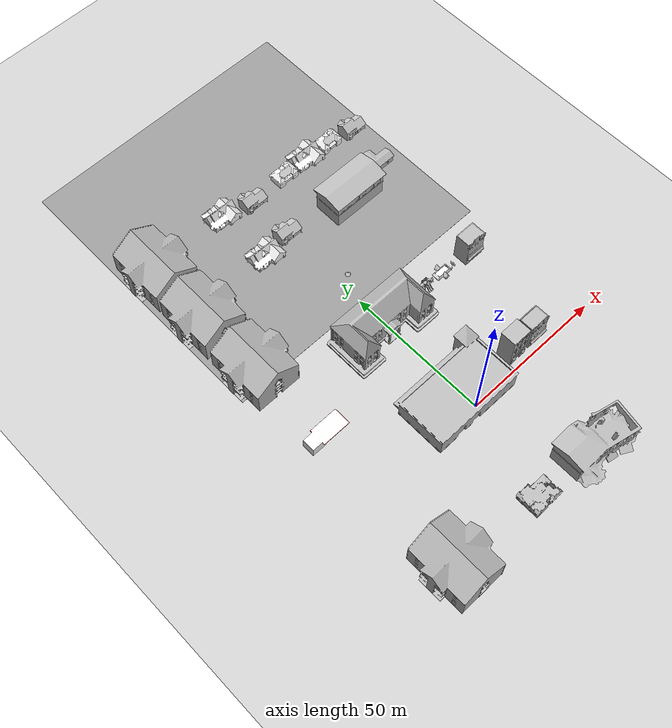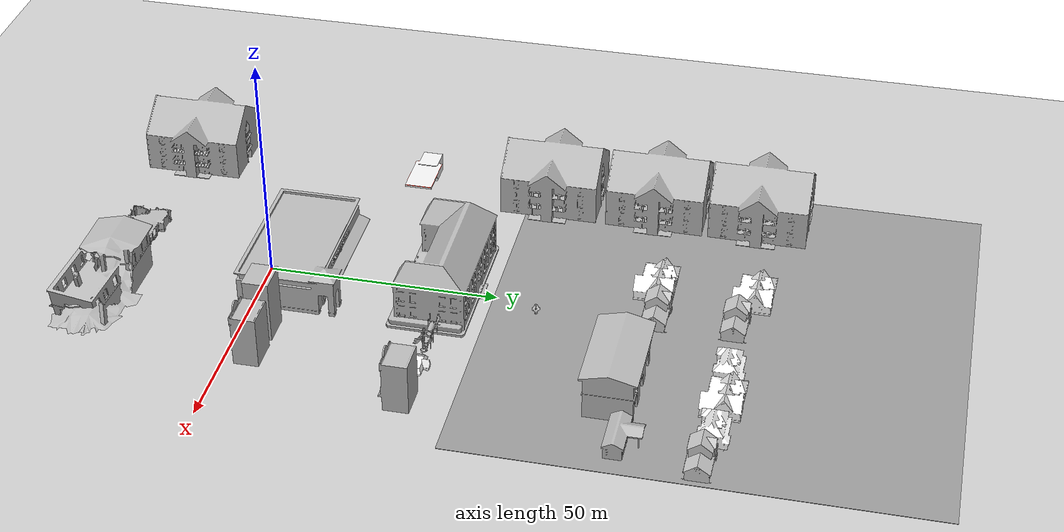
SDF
<sdf version="1.6">
 <world name="default">
  <light name="sun" type="directional">
   <pose>0 0 10 0 -0 0</pose>
   <diffuse>0.8 0.8 0.8 1</diffuse>
   <specular>0.1 0.1 0.1 1</specular>
   <attenuation>
    <range>1000</range>
    <constant>0.9</constant>
    <linear>0.01</linear>
    <quadratic>0.001</quadratic>
   </attenuation>
   <direction>-0.5 0.5 -1</direction>
  </light>
  <model name="ground_plane">
   <static>1</static>
   <link name="link">
    <collision name="collision">
     <geometry><plane><normal>0 0 1</normal><size>100 100</size></plane></geometry>
     <surface><friction><ode><mu>100</mu><mu2>50</mu2></ode></friction></surface>
    </collision>
    <visual name="visual">
     <cast_shadows>0</cast_shadows>
     <geometry><plane><normal>0 0 1</normal><size>100 100</size></plane></geometry>
     <material>
      <script><uri>file://media/materials/scripts/gazebo.material</uri><name>Gazebo/Grey</name></script>
     </material>
    </visual>
   </link>
  </model>
  <gravity>0 0 -9.8</gravity>
  <magnetic_field>6e-06 2.3e-05 -4.2e-05</magnetic_field>
  <atmosphere type="adiabatic"/>
  <physics name="default_physics" default="0" type="ode">
   <max_step_size>0.001</max_step_size>
   <real_time_factor>1</real_time_factor>
   <real_time_update_rate>1000</real_time_update_rate>
  </physics>
  <scene><ambient>0.4 0.4 0.4 1</ambient><background>0.7 0.7 0.7 1</background><shadows>1</shadows></scene>
  <spherical_coordinates>
   <surface_model>EARTH_WGS84</surface_model>
   <latitude_deg>0</latitude_deg>
   <longitude_deg>0</longitude_deg>
   <elevation>0</elevation>
   <heading_deg>0</heading_deg>
  </spherical_coordinates>
  <model name="collapsed_house">
   <static>1</static>
   <link name="link">
    <collision name="collision">
     <geometry>
      <mesh><scale>1 1 1</scale><uri>model://collapsed_house/meshes/collapsed_house.dae</uri></mesh>
     </geometry>
    </collision>
    <visual name="visual">
     <geometry>
      <mesh><scale>1 1 1</scale><uri>model://collapsed_house/meshes/collapsed_house.dae</uri></mesh>
     </geometry>
    </visual>
   </link>
   <pose>-7.6578 -31.8376 0 0 -0 0</pose>
  </model>
  <model name="collapsed_fire_station">
   <static>1</static>
   <link name="link">
    <collision name="collision">
     <geometry>
      <mesh><uri>model://collapsed_fire_station/meshes/collapsed_fire_station.dae</uri><scale>1 1 1</scale></mesh>
     </geometry>
    </collision>
    <visual name="visual">
     <geometry>
      <mesh><uri>model://collapsed_fire_station/meshes/collapsed_fire_station.dae</uri><scale>1 1 1</scale></mesh>
     </geometry>
    </visual>
   </link>
   <pose>17.3175 -32.6971 0 0 -0 0</pose>
  </model>
  <model name="ground_plane_0">
   <static>1</static>
   <link name="link">
    <collision name="collision">
     <geometry><plane><normal>0 0 1</normal><size>100 100</size></plane></geometry>
     <surface><friction><ode><mu>100</mu><mu2>50</mu2></ode></friction></surface>
    </collision>
    <visual name="visual">
     <cast_shadows>0</cast_shadows>
     <geometry><plane><normal>0 0 1</normal><size>100 100</size></plane></geometry>
     <material>
      <script><uri>file://media/materials/scripts/gazebo.material</uri><name>Gazebo/Grey</name></script>
     </material>
    </visual>
   </link>
   <pose>0.09158 99.1869 0 0 -0 0</pose>
  </model>
  <model name="House 1">
   <static>1</static>
   <link name="link">
    <collision name="collision">
     <geometry><mesh><uri>model://house_1/meshes/house_1.dae</uri><scale>1 1 1</scale></mesh></geometry>
    </collision>
    <visual name="visual">
     <geometry><mesh><uri>model://house_1/meshes/house_1.dae</uri><scale>1 1 1</scale></mesh></geometry>
     <material>
      <script>
       <uri>model://house_1/materials/scripts</uri>
       <uri>model://house_1/materials/textures</uri>
       <name>House_1/Diffuse</name>
      </script>
      <shader type="normal_map_object_space"><normal_map>House_1_Normal.png</normal_map></shader>
     </material>
    </visual>
   </link>
   <pose>25 102 0 0 -0 0</pose>
  </model>
  <model name="House 2">
   <static>1</static>
   <link name="link">
    <collision name="collision">
     <geometry><mesh><uri>model://house_2/meshes/house_2.dae</uri><scale>1 1 1</scale></mesh></geometry>
    </collision>
    <visual name="visual">
     <geometry><mesh><uri>model://house_2/meshes/house_2.dae</uri><scale>1 1 1</scale></mesh></geometry>
     <material>
      <script>
       <uri>model://house_2/materials/scripts</uri>
       <uri>model://house_2/materials/textures</uri>
       <name>House_2/Diffuse</name>
      </script>
     </material>
    </visual>
   </link>
   <pose>34 101 0 0 -0 0</pose>
  </model>
  <model name="House 3">
   <static>1</static>
   <link name="link">
    <collision name="collision">
     <geometry><mesh><uri>model://house_3/meshes/house_3.dae</uri><scale>1 1 1</scale></mesh></geometry>
    </collision>
    <visual name="visual">
     <geometry><mesh><uri>model://house_3/meshes/house_3.dae</uri><scale>1 1 1</scale></mesh></geometry>
     <material>
      <script>
       <uri>model://house_3/materials/scripts</uri>
       <uri>model://house_3/materials/textures</uri>
       <name>House_3/Diffuse</name>
      </script>
     </material>
    </visual>
   </link>
   <pose>45 100 0 0 -0 0</pose>
  </model>
  <model name="salon">
   <static>1</static>
   <link name="link">
    <collision name="collision">
     <pose>0 0 5.69469 0 -0 0</pose>
     <geometry><box><size>7.21297 5.37875 11.3894</size></box></geometry>
    </collision>
    <visual name="visual">
     <pose>0 -0.903605 0 0 -0 0</pose>
     <geometry><mesh><uri>model://salon/meshes/salon.dae</uri><scale>1 1 1</scale></mesh></geometry>
    </visual>
   </link>
   <pose>29.6708 5.18807 0 0 -0 0</pose>
  </model>
  <model name="House 2_clone">
   <static>1</static>
   <link name="link">
    <collision name="collision">
     <geometry><mesh><uri>model://house_2/meshes/house_2.dae</uri><scale>1 1 1</scale></mesh></geometry>
    </collision>
    <visual name="visual">
     <geometry><mesh><uri>model://house_2/meshes/house_2.dae</uri><scale>1 1 1</scale></mesh></geometry>
     <material>
      <script>
       <uri>model://house_2/materials/scripts</uri>
       <uri>model://house_2/materials/textures</uri>
       <name>House_2/Diffuse</name>
      </script>
     </material>
    </visual>
   </link>
   <pose>14.1441 101.205 0 0 -0 0</pose>
  </model>
  <model name="House 3_clone">
   <static>1</static>
   <link name="link">
    <collision name="collision">
     <geometry><mesh><uri>model://house_3/meshes/house_3.dae</uri><scale>1 1 1</scale></mesh></geometry>
    </collision>
    <visual name="visual">
     <geometry><mesh><uri>model://house_3/meshes/house_3.dae</uri><scale>1 1 1</scale></mesh></geometry>
     <material>
      <script>
       <uri>model://house_3/materials/scripts</uri>
       <uri>model://house_3/materials/textures</uri>
       <name>House_3/Diffuse</name>
      </script>
     </material>
    </visual>
   </link>
   <pose>0.581015 100.736 0 0 -0 0</pose>
  </model>
  <model name="House 1_clone">
   <static>1</static>
   <link name="link">
    <collision name="collision">
     <geometry><mesh><uri>model://house_1/meshes/house_1.dae</uri><scale>1 1 1</scale></mesh></geometry>
    </collision>
    <visual name="visual">
     <geometry><mesh><uri>model://house_1/meshes/house_1.dae</uri><scale>1 1 1</scale></mesh></geometry>
     <material>
      <script>
       <uri>model://house_1/materials/scripts</uri>
       <uri>model://house_1/materials/textures</uri>
       <name>House_1/Diffuse</name>
      </script>
      <shader type="normal_map_object_space"><normal_map>House_1_Normal.png</normal_map></shader>
     </material>
    </visual>
   </link>
   <pose>-10.8574 103.533 0 0 -0 0</pose>
  </model>
  <model name="apartment_clone">
   <static>1</static>
   <link name="link">
    <collision name="collision">
     <geometry><mesh><uri>model://apartment/meshes/apartment.dae</uri><scale>1 1 1</scale></mesh></geometry>
    </collision>
    <visual name="visual">
     <geometry><mesh><uri>model://apartment/meshes/apartment.dae</uri><scale>1 1 1</scale></mesh></geometry>
    </visual>
   </link>
   <pose>-40 78.147 0 0 -0 0</pose>
  </model>
  <model name="playground_clone">
   <static>1</static>
   <link name="link">
    <collision name="collision">
     <geometry><mesh><uri>model://playground/meshes/playground.dae</uri><scale>1 1 1</scale></mesh></geometry>
    </collision>
    <visual name="visual">
     <geometry><mesh><uri>model://playground/meshes/playground.dae</uri><scale>1 1 1</scale></mesh></geometry>
    </visual>
   </link>
   <pose>16.2297 39.2375 0 0 -0 0</pose>
  </model>
  <model name="House 1_clone_clone">
   <static>1</static>
   <link name="link">
    <collision name="collision">
     <geometry><mesh><uri>model://house_1/meshes/house_1.dae</uri><scale>1 1 1</scale></mesh></geometry>
    </collision>
    <visual name="visual">
     <geometry><mesh><uri>model://house_1/meshes/house_1.dae</uri><scale>1 1 1</scale></mesh></geometry>
     <material>
      <script>
       <uri>model://house_1/materials/scripts</uri>
       <uri>model://house_1/materials/textures</uri>
       <name>House_1/Diffuse</name>
      </script>
      <shader type="normal_map_object_space"><normal_map>House_1_Normal.png</normal_map></shader>
     </material>
    </visual>
   </link>
   <pose>-10.595 82.68 0 0 -0 0</pose>
  </model>
  <model name="House 3_clone_clone">
   <static>1</static>
   <link name="link">
    <collision name="collision">
     <geometry><mesh><uri>model://house_3/meshes/house_3.dae</uri><scale>1 1 1</scale></mesh></geometry>
    </collision>
    <visual name="visual">
     <geometry><mesh><uri>model://house_3/meshes/house_3.dae</uri><scale>1 1 1</scale></mesh></geometry>
     <material>
      <script>
       <uri>model://house_3/materials/scripts</uri>
       <uri>model://house_3/materials/textures</uri>
       <name>House_3/Diffuse</name>
      </script>
     </material>
    </visual>
   </link>
   <pose>0.58 84.1301 0 0 -0 0</pose>
  </model>
  <model name="fire_station_clone">
   <static>1</static>
   <link name="link">
    <collision name="main">
     <pose>0 -0.135 5 0 -0 0</pose>
     <geometry><box><size>19.98 9.68 10</size></box></geometry>
    </collision>
    <collision name="front_top">
     <pose>0 4.957 7 0 -0 0</pose>
     <geometry><box><size>20 0.515 6</size></box></geometry>
    </collision>
    <collision name="column_0">
     <pose>9.333 4.957 2 0 -0 0</pose>
     <geometry><box><size>1.315 0.515 4</size></box></geometry>
    </collision>
    <collision name="column_1">
     <pose>3.33 4.957 2 0 -0 0</pose>
     <geometry><box><size>2.63 0.515 4</size></box></geometry>
    </collision>
    <collision name="column_2">
     <pose>-3.33 4.957 2 0 -0 0</pose>
     <geometry><box><size>2.63 0.515 4</size></box></geometry>
    </collision>
    <collision name="column_3">
     <pose>-9.333 4.957 2 0 -0 0</pose>
     <geometry><box><size>1.315 0.515 4</size></box></geometry>
    </collision>
    <collision name="roof_back">
     <pose>0 -2.742 10.467 0.25 -0 0</pose>
     <geometry><box><size>21.47 6.12 0.28</size></box></geometry>
    </collision>
    <collision name="roof_front">
     <pose>0 3.12 10.467 -0.25 0 0</pose>
     <geometry><box><size>21.47 6.12 0.28</size></box></geometry>
    </collision>
    <collision name="roof_base">
     <pose>0 0.188 9.705 0 -0 0</pose>
     <geometry><box><size>21.47 11.86 0.28</size></box></geometry>
    </collision>
    <collision name="roof_filling_0">
     <pose>0 0.188 9.985 0 -0 0</pose>
     <geometry><box><size>21.47 9.53 0.28</size></box></geometry>
    </collision>
    <collision name="roof_filling_1">
     <pose>0 0.188 10.14 0 -0 0</pose>
     <geometry><box><size>21.47 8.41 0.28</size></box></geometry>
    </collision>
    <collision name="roof_filling_2">
     <pose>0 0.188 10.42 0 -0 0</pose>
     <geometry><box><size>21.47 6.25 0.28</size></box></geometry>
    </collision>
    <collision name="roof_filling_3">
     <pose>0 0.188 10.7 0 -0 0</pose>
     <geometry><box><size>21.47 4.05 0.28</size></box></geometry>
    </collision>
    <collision name="roof_filling_4">
     <pose>0 0.188 10.98 0 -0 0</pose>
     <geometry><box><size>21.47 1.83 0.28</size></box></geometry>
    </collision>
    <visual name="visual">
     <geometry><mesh><uri>model://fire_station/meshes/fire_station.dae</uri><scale>1 1 1</scale></mesh></geometry>
    </visual>
   </link>
   <pose>24.6589 79.9821 0 0 -0 0</pose>
  </model>
  <model name="post_office_clone">
   <static>1</static>
   <link name="link">
    <collision name="collision">
     <geometry><mesh><uri>model://post_office/meshes/post_office.dae</uri><scale>1 1 1</scale></mesh></geometry>
    </collision>
    <visual name="visual">
     <geometry><mesh><uri>model://post_office/meshes/post_office.dae</uri><scale>1 1 1</scale></mesh></geometry>
    </visual>
   </link>
   <pose>40.9742 83.1997 0 0 -0 0</pose>
  </model>
  <model name="apartment_clone_0">
   <static>1</static>
   <link name="link">
    <collision name="collision">
     <geometry><mesh><uri>model://apartment/meshes/apartment.dae</uri><scale>1 1 1</scale></mesh></geometry>
    </collision>
    <visual name="visual">
     <geometry><mesh><uri>model://apartment/meshes/apartment.dae</uri><scale>1 1 1</scale></mesh></geometry>
    </visual>
   </link>
   <pose>-39.9981 54.2629 0 0 -0 0</pose>
  </model>
  <model name="Gas Station_clone">
   <static>1</static>
   <link name="link">
    <collision name="collision">
     <geometry><mesh><uri>model://gas_station/meshes/gas_station.dae</uri><scale>1 1 1</scale></mesh></geometry>
    </collision>
    <visual name="visual">
     <geometry><mesh><uri>model://gas_station/meshes/gas_station.dae</uri><scale>1 1 1</scale></mesh></geometry>
     <material>
      <script>
       <uri>model://gas_station/materials/scripts</uri>
       <uri>model://gas_station/materials/textures</uri>
       <name>GasStation/Diffuse</name>
      </script>
      <shader type="normal_map_object_space"><normal_map>GasStation_Normal.png</normal_map></shader>
     </material>
    </visual>
   </link>
   <pose>-39.7646 24.2624 0 0 -0 0</pose>
  </model>
  <model name="Fast Food_clone">
   <static>1</static>
   <link name="link">
    <collision name="collision">
     <geometry><mesh><uri>model://fast_food/meshes/fast_food.dae</uri><scale>1 1 1</scale></mesh></geometry>
    </collision>
    <visual name="visual">
     <geometry><mesh><uri>model://fast_food/meshes/fast_food.dae</uri><scale>1 1 1</scale></mesh></geometry>
     <material>
      <script>
       <uri>model://fast_food/materials/scripts</uri>
       <uri>model://fast_food/materials/textures</uri>
       <name>FastFood/Diffuse</name>
      </script>
     </material>
    </visual>
   </link>
   <pose>26.2407 39.3885 0 0 -0 0</pose>
  </model>
  <model name="thrift_shop_clone_clone">
   <static>1</static>
   <link name="link">
    <collision name="collision">
     <pose>0 0 5.69469 0 -0 0</pose>
     <geometry><box><size>7.21297 5.43165 11.3894</size></box></geometry>
    </collision>
    <visual name="visual">
     <pose>0 -0.912491 0 0 -0 0</pose>
     <geometry><mesh><uri>model://thrift_shop/meshes/thrift_shop.dae</uri><scale>1 1 1</scale></mesh></geometry>
    </visual>
   </link>
   <pose>37.5008 38.8053 0 0 -0 0</pose>
  </model>
  <model name="fountain_clone">
   <static>1</static>
   <link name="link">
    <collision name="collision">
     <geometry><mesh><uri>model://fountain/meshes/fountain.dae</uri><scale>1 1 1</scale></mesh></geometry>
    </collision>
    <visual name="visual">
     <geometry><mesh><uri>model://fountain/meshes/fountain.dae</uri><scale>1 1 1</scale></mesh></geometry>
    </visual>
   </link>
   <pose>3.64431 59.1702 0 0 -0 0</pose>
  </model>
  <model name="grocery_store_clone">
   <static>1</static>
   <link name="link">
    <collision name="collision">
     <pose>0 0 4.04605 0 -0 0</pose>
     <geometry><box><size>32.1985 17.5425 8.09209</size></box></geometry>
    </collision>
    <visual name="visual">
     <pose>0 -1.96155 0 0 -0 0</pose>
     <geometry>
      <mesh><uri>model://grocery_store/meshes/grocery_store.dae</uri><scale>1 1 1</scale></mesh>
     </geometry>
    </visual>
   </link>
   <pose>-2.36092 5.69998 0 0 -0 0</pose>
  </model>
  <model name="law_office_clone">
   <static>1</static>
   <link name="link">
    <collision name="collision">
     <pose>0 0 6.96244 0 -0 0</pose>
     <geometry><box><size>6.84401 5.43165 13.9249</size></box></geometry>
    </collision>
    <visual name="visual">
     <geometry><mesh><uri>model://law_office/meshes/law_office.dae</uri><scale>1 1 1</scale></mesh></geometry>
    </visual>
   </link>
   <pose>20.9097 5.06987 0 0 -0 0</pose>
  </model>
  <model name="apartment_clone_clone">
   <static>1</static>
   <link name="link">
    <collision name="collision">
     <geometry><mesh><uri>model://apartment/meshes/apartment.dae</uri><scale>1 1 1</scale></mesh></geometry>
    </collision>
    <visual name="visual">
     <geometry><mesh><uri>model://apartment/meshes/apartment.dae</uri><scale>1 1 1</scale></mesh></geometry>
    </visual>
   </link>
   <pose>-40.0131 101.067 0 0 -0 0</pose>
  </model>
  <model name="apartment_clone_0_clone">
   <static>1</static>
   <link name="link">
    <collision name="collision">
     <geometry><mesh><uri>model://apartment/meshes/apartment.dae</uri><scale>1 1 1</scale></mesh></geometry>
    </collision>
    <visual name="visual">
     <geometry><mesh><uri>model://apartment/meshes/apartment.dae</uri><scale>1 1 1</scale></mesh></geometry>
    </visual>
   </link>
   <pose>-40.2279 -29.2375 0 0 -0 0</pose>
  </model>
  <model name="school">
   <static>1</static>
   <link name="link">
    <collision name="collision">
     <geometry><mesh><uri>model://school/meshes/school.dae</uri></mesh></geometry>
    </collision>
    <visual name="visual"><geometry><mesh><uri>model://school/meshes/school.dae</uri></mesh></geometry></visual>
   </link>
   <pose>-1.52454 40.6258 0 0 -0 0</pose>
  </model>
 </world>
</sdf>
